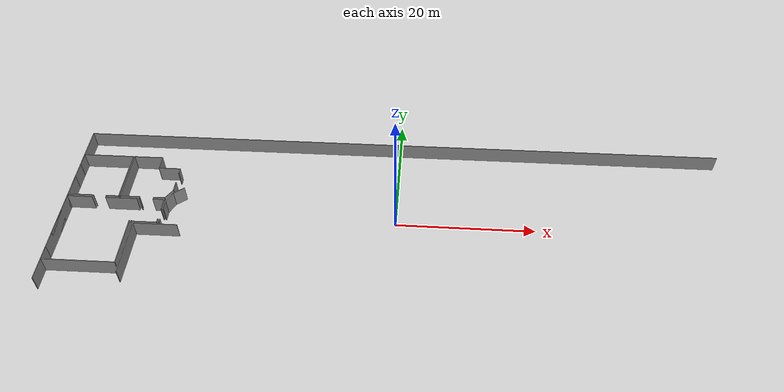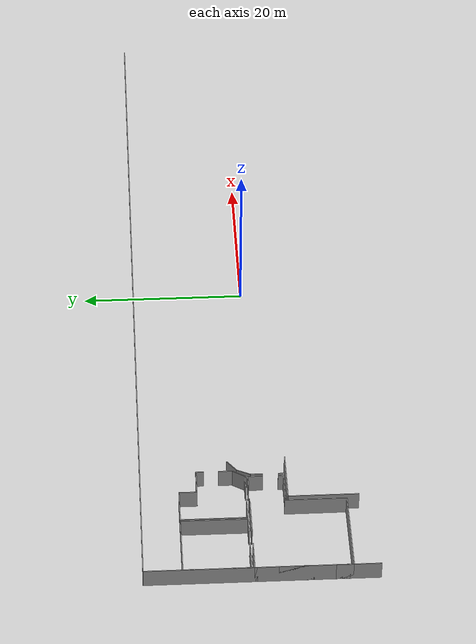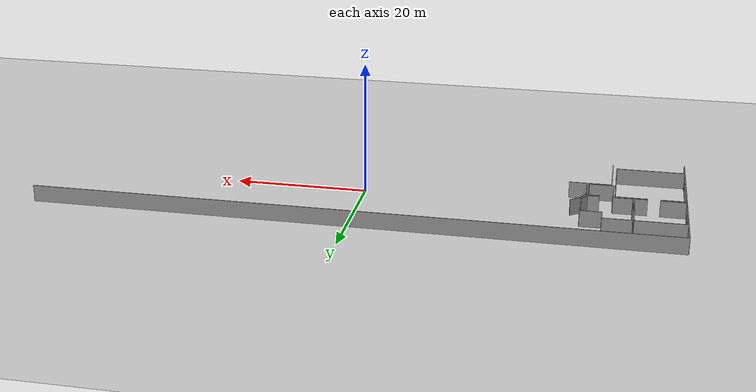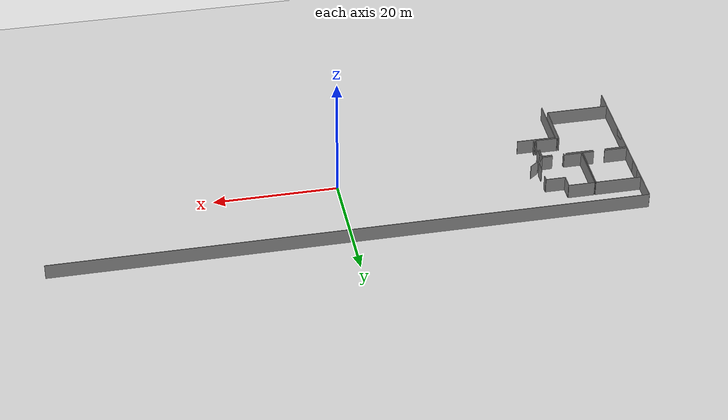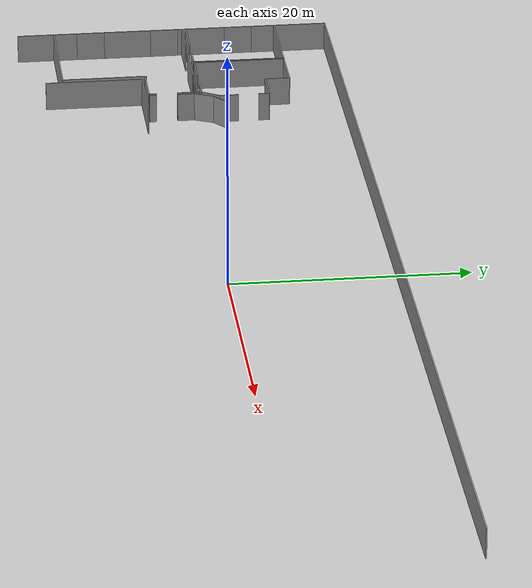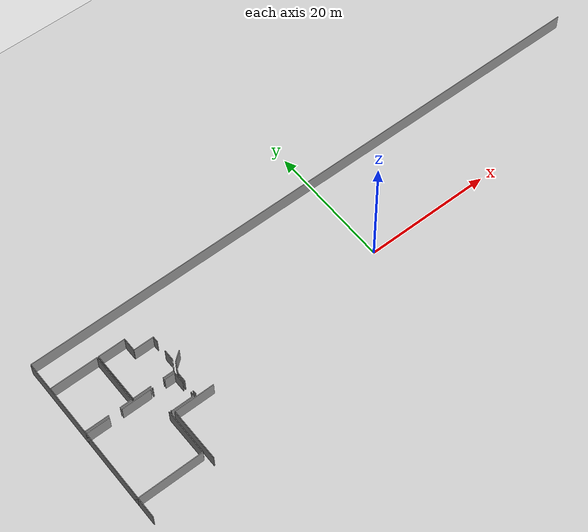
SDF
<sdf version="1.6">
 <world name="default">
  <model name="ground_plane">
   <static>1</static>
   <link name="link">
    <collision name="collision">
     <geometry><plane><normal>0 0 1</normal><size>100 100</size></plane></geometry>
     <surface><friction><ode><mu>100</mu><mu2>50</mu2></ode></friction></surface>
    </collision>
    <visual name="visual">
     <cast_shadows>0</cast_shadows>
     <geometry><plane><normal>0 0 1</normal><size>100 100</size></plane></geometry>
     <material>
      <script><uri>file://media/materials/scripts/gazebo.material</uri><name>Gazebo/Grey</name></script>
     </material>
    </visual>
   </link>
  </model>
  <model name="0510032271_A_40_1_105">
   <static>1</static>
   <link name="Wall_0">
    <collision name="Wall_0_Collision">
     <geometry><box><size>1.86958950014 0.1 2.5</size></box></geometry>
     <pose>0.93479475007 0 1.25 0 0 0</pose>
    </collision>
    <visual name="Wall_0_Visual">
     <pose>0.93479475007 0 1.25 0 0 0</pose>
     <geometry><box><size>1.86958950014 0.1 2.5</size></box></geometry>
     <material>
      <script><uri>file://media/materials/scripts/gazebo.material</uri><name>Gazebo/Grey</name></script>
      <ambient>1 1 1 1</ambient>
     </material>
    </visual>
    <pose>7.43367774365 -12.5325581986 0 0 0 3.14159265359</pose>
   </link>
   <link name="Wall_1">
    <collision name="Wall_1_Collision">
     <geometry><box><size>3.76126526364 0.1 2.5</size></box></geometry>
     <pose>1.88063263182 0 1.25 0 0 0</pose>
    </collision>
    <visual name="Wall_1_Visual">
     <pose>1.88063263182 0 1.25 0 0 0</pose>
     <geometry><box><size>3.76126526364 0.1 2.5</size></box></geometry>
     <material>
      <script><uri>file://media/materials/scripts/gazebo.material</uri><name>Gazebo/Grey</name></script>
      <ambient>1 1 1 1</ambient>
     </material>
    </visual>
    <pose>3.76875428397 -12.5325581986 0 0 0 3.14159265359</pose>
   </link>
   <link name="Wall_2">
    <collision name="Wall_2_Collision">
     <geometry><box><size>3.45370769973 0.1 2.5</size></box></geometry>
     <pose>1.72685384986 0 1.25 0 0 0</pose>
    </collision>
    <visual name="Wall_2_Visual">
     <pose>1.72685384986 0 1.25 0 0 0</pose>
     <geometry><box><size>3.45370769973 0.1 2.5</size></box></geometry>
     <material>
      <script><uri>file://media/materials/scripts/gazebo.material</uri><name>Gazebo/Grey</name></script>
      <ambient>1 1 1 1</ambient>
     </material>
    </visual>
    <pose>0.0074890203346 -12.5325581986 0 0 0 1.57079632679</pose>
   </link>
   <link name="Wall_3">
    <collision name="Wall_3_Collision">
     <geometry><box><size>2.05668807596 0.1 2.5</size></box></geometry>
     <pose>1.02834403798 0 1.25 0 0 0</pose>
    </collision>
    <visual name="Wall_3_Visual">
     <pose>1.02834403798 0 1.25 0 0 0</pose>
     <geometry><box><size>2.05668807596 0.1 2.5</size></box></geometry>
     <material>
      <script><uri>file://media/materials/scripts/gazebo.material</uri><name>Gazebo/Grey</name></script>
      <ambient>1 1 1 1</ambient>
     </material>
    </visual>
    <pose>0.0074890203346 -6.63095630982 0 0 0 1.57079632679</pose>
   </link>
   <link name="Wall_4">
    <collision name="Wall_4_Collision">
     <geometry><box><size>7.446497931 0.1 2.5</size></box></geometry>
     <pose>3.7232489655 0 1.25 0 0 0</pose>
    </collision>
    <visual name="Wall_4_Visual">
     <pose>3.7232489655 0 1.25 0 0 0</pose>
     <geometry><box><size>7.446497931 0.1 2.5</size></box></geometry>
     <material>
      <script><uri>file://media/materials/scripts/gazebo.material</uri><name>Gazebo/Grey</name></script>
      <ambient>1 1 1 1</ambient>
     </material>
    </visual>
    <pose>0.0074890203346 -4.57426823386 0 0 0 0.0</pose>
   </link>
   <link name="Wall_5">
    <collision name="Wall_5_Collision">
     <geometry><box><size>7.95831587878 0.1 2.5</size></box></geometry>
     <pose>3.97915793939 0 1.25 0 0 0</pose>
    </collision>
    <visual name="Wall_5_Visual">
     <pose>3.97915793939 0 1.25 0 0 0</pose>
     <geometry><box><size>7.95831587878 0.1 2.5</size></box></geometry>
     <material>
      <script><uri>file://media/materials/scripts/gazebo.material</uri><name>Gazebo/Grey</name></script>
      <ambient>1 1 1 1</ambient>
     </material>
    </visual>
    <pose>7.45398695133 -4.57426823386 0 0 0 -1.57334827749</pose>
   </link>
   <link name="Wall_6">
    <collision name="Wall_6_Collision">
     <geometry><box><size>10.1986494377 0.1 2.5</size></box></geometry>
     <pose>5.09932471884 0 1.25 0 0 0</pose>
    </collision>
    <visual name="Wall_6_Visual">
     <pose>5.09932471884 0 1.25 0 0 0</pose>
     <geometry><box><size>10.1986494377 0.1 2.5</size></box></geometry>
     <material>
      <script><uri>file://media/materials/scripts/gazebo.material</uri><name>Gazebo/Grey</name></script>
      <ambient>1 1 1 1</ambient>
     </material>
    </visual>
    <pose>10.1986494377 -24.3393160874 0 0 0 3.14159265359</pose>
   </link>
   <link name="Wall_7">
    <collision name="Wall_7_Collision">
     <geometry><box><size>2.03904445178 0.1 2.5</size></box></geometry>
     <pose>1.01952222589 0 1.25 0 0 0</pose>
    </collision>
    <visual name="Wall_7_Visual">
     <pose>1.01952222589 0 1.25 0 0 0</pose>
     <geometry><box><size>2.03904445178 0.1 2.5</size></box></geometry>
     <material>
      <script><uri>file://media/materials/scripts/gazebo.material</uri><name>Gazebo/Grey</name></script>
      <ambient>1 1 1 1</ambient>
     </material>
    </visual>
    <pose>0.0 -24.3393160874 0 0 0 1.57079632679</pose>
   </link>
   <link name="Wall_8">
    <collision name="Wall_8_Collision">
     <geometry><box><size>4.1432053007 0.1 2.5</size></box></geometry>
     <pose>2.07160265035 0 1.25 0 0 0</pose>
    </collision>
    <visual name="Wall_8_Visual">
     <pose>2.07160265035 0 1.25 0 0 0</pose>
     <geometry><box><size>4.1432053007 0.1 2.5</size></box></geometry>
     <material>
      <script><uri>file://media/materials/scripts/gazebo.material</uri><name>Gazebo/Grey</name></script>
      <ambient>1 1 1 1</ambient>
     </material>
    </visual>
    <pose>0.0 -19.8389225965 0 0 0 1.57079632679</pose>
   </link>
   <link name="Wall_9">
    <collision name="Wall_9_Collision">
     <geometry><box><size>0.367215861491 0.1 2.5</size></box></geometry>
     <pose>0.183607930746 0 1.25 0 0 0</pose>
    </collision>
    <visual name="Wall_9_Visual">
     <pose>0.183607930746 0 1.25 0 0 0</pose>
     <geometry><box><size>0.367215861491 0.1 2.5</size></box></geometry>
     <material>
      <script><uri>file://media/materials/scripts/gazebo.material</uri><name>Gazebo/Grey</name></script>
      <ambient>1 1 1 1</ambient>
     </material>
    </visual>
    <pose>0.0 -13.2419842096 0 0 0 1.57079632679</pose>
   </link>
   <link name="Wall_10">
    <collision name="Wall_10_Collision">
     <geometry><box><size>3.64892995862 0.1 2.5</size></box></geometry>
     <pose>1.82446497931 0 1.25 0 0 0</pose>
    </collision>
    <visual name="Wall_10_Visual">
     <pose>1.82446497931 0 1.25 0 0 0</pose>
     <geometry><box><size>3.64892995862 0.1 2.5</size></box></geometry>
     <material>
      <script><uri>file://media/materials/scripts/gazebo.material</uri><name>Gazebo/Grey</name></script>
      <ambient>1 1 1 1</ambient>
     </material>
    </visual>
    <pose>0.0 -12.8747683481 0 0 0 0.0</pose>
   </link>
   <link name="Wall_11">
    <collision name="Wall_11_Collision">
     <geometry><box><size>4.58772308395 0.1 2.5</size></box></geometry>
     <pose>2.29386154198 0 1.25 0 0 0</pose>
    </collision>
    <visual name="Wall_11_Visual">
     <pose>2.29386154198 0 1.25 0 0 0</pose>
     <geometry><box><size>4.58772308395 0.1 2.5</size></box></geometry>
     <material>
      <script><uri>file://media/materials/scripts/gazebo.material</uri><name>Gazebo/Grey</name></script>
      <ambient>1 1 1 1</ambient>
     </material>
    </visual>
    <pose>5.60089868244 -12.8747683481 0 0 0 0.0</pose>
   </link>
   <link name="Wall_12">
    <collision name="Wall_12_Collision">
     <geometry><box><size>7.36450633191 0.1 2.5</size></box></geometry>
     <pose>3.68225316596 0 1.25 0 0 0</pose>
    </collision>
    <visual name="Wall_12_Visual">
     <pose>3.68225316596 0 1.25 0 0 0</pose>
     <geometry><box><size>7.36450633191 0.1 2.5</size></box></geometry>
     <material>
      <script><uri>file://media/materials/scripts/gazebo.material</uri><name>Gazebo/Grey</name></script>
      <ambient>1 1 1 1</ambient>
     </material>
    </visual>
    <pose>10.1886217664 -16.9748165825 0 0 0 -1.56943470472</pose>
   </link>
   <link name="Wall_13">
    <collision name="Wall_13_Collision">
     <geometry><box><size>3.63839455713 0.1 2.5</size></box></geometry>
     <pose>1.81919727857 0 1.25 0 0 0</pose>
    </collision>
    <visual name="Wall_13_Visual">
     <pose>1.81919727857 0 1.25 0 0 0</pose>
     <geometry><box><size>3.63839455713 0.1 2.5</size></box></geometry>
     <material>
      <script><uri>file://media/materials/scripts/gazebo.material</uri><name>Gazebo/Grey</name></script>
      <ambient>1 1 1 1</ambient>
     </material>
    </visual>
    <pose>14.1099489731 -17.11368079 0 0 0 3.14159265359</pose>
   </link>
   <link name="Wall_14">
    <collision name="Wall_14_Collision">
     <geometry><box><size>0.124393897083 0.1 2.5</size></box></geometry>
     <pose>0.0621969485415 0 1.25 0 0 0</pose>
    </collision>
    <visual name="Wall_14_Visual">
     <pose>0.0621969485415 0 1.25 0 0 0</pose>
     <geometry><box><size>0.124393897083 0.1 2.5</size></box></geometry>
     <material>
      <script><uri>file://media/materials/scripts/gazebo.material</uri><name>Gazebo/Grey</name></script>
      <ambient>1 1 1 1</ambient>
     </material>
    </visual>
    <pose>10.471554416 -17.11368079 0 0 0 1.57079632679</pose>
   </link>
   <link name="Wall_15">
    <collision name="Wall_15_Collision">
     <geometry><box><size>0.139371937752 0.1 2.5</size></box></geometry>
     <pose>0.0696859688761 0 1.25 0 0 0</pose>
    </collision>
    <visual name="Wall_15_Visual">
     <pose>0.0696859688761 0 1.25 0 0 0</pose>
     <geometry><box><size>0.139371937752 0.1 2.5</size></box></geometry>
     <material>
      <script><uri>file://media/materials/scripts/gazebo.material</uri><name>Gazebo/Grey</name></script>
      <ambient>1 1 1 1</ambient>
     </material>
    </visual>
    <pose>10.471554416 -12.8380848417 0 0 0 0.0</pose>
   </link>
   <link name="Wall_16">
    <collision name="Wall_16_Collision">
     <geometry><box><size>1.63590667919 0.1 2.5</size></box></geometry>
     <pose>0.817953339595 0 1.25 0 0 0</pose>
    </collision>
    <visual name="Wall_16_Visual">
     <pose>0.817953339595 0 1.25 0 0 0</pose>
     <geometry><box><size>1.63590667919 0.1 2.5</size></box></geometry>
     <material>
      <script><uri>file://media/materials/scripts/gazebo.material</uri><name>Gazebo/Grey</name></script>
      <ambient>1 1 1 1</ambient>
     </material>
    </visual>
    <pose>12.4829275723 -12.8380848417 0 0 0 0.0</pose>
   </link>
   <link name="Wall_17">
    <collision name="Wall_17_Collision">
     <geometry><box><size>1.80866187708 0.1 2.5</size></box></geometry>
     <pose>0.904330938539 0 1.25 0 0 0</pose>
    </collision>
    <visual name="Wall_17_Visual">
     <pose>0.904330938539 0 1.25 0 0 0</pose>
     <geometry><box><size>1.80866187708 0.1 2.5</size></box></geometry>
     <material>
      <script><uri>file://media/materials/scripts/gazebo.material</uri><name>Gazebo/Grey</name></script>
      <ambient>1 1 1 1</ambient>
     </material>
    </visual>
    <pose>14.1188342515 -12.8380848417 0 0 0 -1.57079632679</pose>
   </link>
   <link name="Wall_18">
    <collision name="Wall_18_Collision">
     <geometry><box><size>0.661885946992 0.1 2.5</size></box></geometry>
     <pose>0.330942973496 0 1.25 0 0 0</pose>
    </collision>
    <visual name="Wall_18_Visual">
     <pose>0.330942973496 0 1.25 0 0 0</pose>
     <geometry><box><size>0.661885946992 0.1 2.5</size></box></geometry>
     <material>
      <script><uri>file://media/materials/scripts/gazebo.material</uri><name>Gazebo/Grey</name></script>
      <ambient>1 1 1 1</ambient>
     </material>
    </visual>
    <pose>14.1188342515 -16.4518544845 0 0 0 -1.58422091345</pose>
   </link>
   <link name="Wall_19">
    <collision name="Wall_19_Collision">
     <geometry><box><size>1.71079688254 0.1 2.5</size></box></geometry>
     <pose>0.855398441268 0 1.25 0 0 0</pose>
    </collision>
    <visual name="Wall_19_Visual">
     <pose>0.855398441268 0 1.25 0 0 0</pose>
     <geometry><box><size>1.71079688254 0.1 2.5</size></box></geometry>
     <material>
      <script><uri>file://media/materials/scripts/gazebo.material</uri><name>Gazebo/Grey</name></script>
      <ambient>1 1 1 1</ambient>
     </material>
    </visual>
    <pose>14.1833159859 -12.509964205 0 0 0 3.14159265359</pose>
   </link>
   <link name="Wall_20">
    <collision name="Wall_20_Collision">
     <geometry><box><size>2.85598233099 0.1 2.5</size></box></geometry>
     <pose>1.42799116549 0 1.25 0 0 0</pose>
    </collision>
    <visual name="Wall_20_Visual">
     <pose>1.42799116549 0 1.25 0 0 0</pose>
     <geometry><box><size>2.85598233099 0.1 2.5</size></box></geometry>
     <material>
      <script><uri>file://media/materials/scripts/gazebo.material</uri><name>Gazebo/Grey</name></script>
      <ambient>1 1 1 1</ambient>
     </material>
    </visual>
    <pose>10.5133152243 -12.509964205 0 0 0 3.14159265359</pose>
   </link>
   <link name="Wall_21">
    <collision name="Wall_21_Collision">
     <geometry><box><size>7.93696529664 0.1 2.5</size></box></geometry>
     <pose>3.96848264832 0 1.25 0 0 0</pose>
    </collision>
    <visual name="Wall_21_Visual">
     <pose>3.96848264832 0 1.25 0 0 0</pose>
     <geometry><box><size>7.93696529664 0.1 2.5</size></box></geometry>
     <material>
      <script><uri>file://media/materials/scripts/gazebo.material</uri><name>Gazebo/Grey</name></script>
      <ambient>1 1 1 1</ambient>
     </material>
    </visual>
    <pose>7.6573328933 -12.509964205 0 0 0 1.57079632679</pose>
   </link>
   <link name="Wall_22">
    <collision name="Wall_22_Collision">
     <geometry><box><size>4.24932091087 0.1 2.5</size></box></geometry>
     <pose>2.12466045543 0 1.25 0 0 0</pose>
    </collision>
    <visual name="Wall_22_Visual">
     <pose>2.12466045543 0 1.25 0 0 0</pose>
     <geometry><box><size>4.24932091087 0.1 2.5</size></box></geometry>
     <material>
      <script><uri>file://media/materials/scripts/gazebo.material</uri><name>Gazebo/Grey</name></script>
      <ambient>1 1 1 1</ambient>
     </material>
    </visual>
    <pose>7.6573328933 -4.57299890838 0 0 0 0.0</pose>
   </link>
   <link name="Wall_23">
    <collision name="Wall_23_Collision">
     <geometry><box><size>2.13398999772 0.1 2.5</size></box></geometry>
     <pose>1.06699499886 0 1.25 0 0 0</pose>
    </collision>
    <visual name="Wall_23_Visual">
     <pose>1.06699499886 0 1.25 0 0 0</pose>
     <geometry><box><size>2.13398999772 0.1 2.5</size></box></geometry>
     <material>
      <script><uri>file://media/materials/scripts/gazebo.material</uri><name>Gazebo/Grey</name></script>
      <ambient>1 1 1 1</ambient>
     </material>
    </visual>
    <pose>11.9066538042 -4.57299890838 0 0 0 -1.57079632679</pose>
   </link>
   <link name="Wall_24">
    <collision name="Wall_24_Collision">
     <geometry><box><size>3.1635398949 0.1 2.5</size></box></geometry>
     <pose>1.58176994745 0 1.25 0 0 0</pose>
    </collision>
    <visual name="Wall_24_Visual">
     <pose>1.58176994745 0 1.25 0 0 0</pose>
     <geometry><box><size>3.1635398949 0.1 2.5</size></box></geometry>
     <material>
      <script><uri>file://media/materials/scripts/gazebo.material</uri><name>Gazebo/Grey</name></script>
      <ambient>1 1 1 1</ambient>
     </material>
    </visual>
    <pose>11.9066538042 -6.7069889061 0 0 0 0.0</pose>
   </link>
   <link name="Wall_25">
    <collision name="Wall_25_Collision">
     <geometry><box><size>0.918103120002 0.1 2.5</size></box></geometry>
     <pose>0.459051560001 0 1.25 0 0 0</pose>
    </collision>
    <visual name="Wall_25_Visual">
     <pose>0.459051560001 0 1.25 0 0 0</pose>
     <geometry><box><size>0.918103120002 0.1 2.5</size></box></geometry>
     <material>
      <script><uri>file://media/materials/scripts/gazebo.material</uri><name>Gazebo/Grey</name></script>
      <ambient>1 1 1 1</ambient>
     </material>
    </visual>
    <pose>15.0701936991 -6.7069889061 0 0 0 -1.57079632679</pose>
   </link>
   <link name="Wall_26">
    <collision name="Wall_26_Collision">
     <geometry><box><size>1.648599934 0.1 2.5</size></box></geometry>
     <pose>0.824299966998 0 1.25 0 0 0</pose>
    </collision>
    <visual name="Wall_26_Visual">
     <pose>0.824299966998 0 1.25 0 0 0</pose>
     <geometry><box><size>1.648599934 0.1 2.5</size></box></geometry>
     <material>
      <script><uri>file://media/materials/scripts/gazebo.material</uri><name>Gazebo/Grey</name></script>
      <ambient>1 1 1 1</ambient>
     </material>
    </visual>
    <pose>15.0701936991 -9.38843898352 0 0 0 -1.57079632679</pose>
   </link>
   <link name="Wall_27">
    <collision name="Wall_27_Collision">
     <geometry><box><size>1.71931991808 0.1 2.5</size></box></geometry>
     <pose>0.85965995904 0 1.25 0 0 0</pose>
    </collision>
    <visual name="Wall_27_Visual">
     <pose>0.85965995904 0 1.25 0 0 0</pose>
     <geometry><box><size>1.71931991808 0.1 2.5</size></box></geometry>
     <material>
      <script><uri>file://media/materials/scripts/gazebo.material</uri><name>Gazebo/Grey</name></script>
      <ambient>1 1 1 1</ambient>
     </material>
    </visual>
    <pose>15.0701936991 -11.0370389175 0 0 0 -2.11277316238</pose>
   </link>
   <link name="Wall_48">
    <collision name="Wall_48_Collision">
     <geometry><box><size>0.60737224239 0.1 2.5</size></box></geometry>
     <pose>0.303686121195 0 1.25 0 0 0</pose>
    </collision>
    <visual name="Wall_48_Visual">
     <pose>0.303686121195 0 1.25 0 0 0</pose>
     <geometry><box><size>0.60737224239 0.1 2.5</size></box></geometry>
     <material>
      <script><uri>file://media/materials/scripts/gazebo.material</uri><name>Gazebo/Grey</name></script>
      <ambient>1 1 1 1</ambient>
     </material>
    </visual>
    <pose>14.4406082608 -17.0886750781 0 0 0 1.57079632679</pose>
   </link>
   <link name="Wall_49">
    <collision name="Wall_49_Collision">
     <geometry><box><size>1.45693178645 0.1 2.5</size></box></geometry>
     <pose>0.728465893224 0 1.25 0 0 0</pose>
    </collision>
    <visual name="Wall_49_Visual">
     <pose>0.728465893224 0 1.25 0 0 0</pose>
     <geometry><box><size>1.45693178645 0.1 2.5</size></box></geometry>
     <material>
      <script><uri>file://media/materials/scripts/gazebo.material</uri><name>Gazebo/Grey</name></script>
      <ambient>1 1 1 1</ambient>
     </material>
    </visual>
    <pose>14.4406082608 -14.6401462263 0 0 0 1.57079632679</pose>
   </link>
   <link name="Wall_50">
    <collision name="Wall_50_Collision">
     <geometry><box><size>1.78620986174 0.1 2.5</size></box></geometry>
     <pose>0.89310493087 0 1.25 0 0 0</pose>
    </collision>
    <visual name="Wall_50_Visual">
     <pose>0.89310493087 0 1.25 0 0 0</pose>
     <geometry><box><size>1.78620986174 0.1 2.5</size></box></geometry>
     <material>
      <script><uri>file://media/materials/scripts/gazebo.material</uri><name>Gazebo/Grey</name></script>
      <ambient>1 1 1 1</ambient>
     </material>
    </visual>
    <pose>14.4406082608 -13.1832144398 0 0 0 1.13925215173</pose>
   </link>
   <link name="Wall_51">
    <collision name="Wall_51_Collision">
     <geometry><box><size>1.77744013238 0.1 2.5</size></box></geometry>
     <pose>0.888720066191 0 1.25 0 0 0</pose>
    </collision>
    <visual name="Wall_51_Visual">
     <pose>0.888720066191 0 1.25 0 0 0</pose>
     <geometry><box><size>1.77744013238 0.1 2.5</size></box></geometry>
     <material>
      <script><uri>file://media/materials/scripts/gazebo.material</uri><name>Gazebo/Grey</name></script>
      <ambient>1 1 1 1</ambient>
     </material>
    </visual>
    <pose>15.1877332386 -11.5607626107 0 0 0 0.662126727762</pose>
   </link>
   <link name="Wall_100">
    <collision name="Wall_100_Collision">
     <geometry><box><size>8.43416008733 0.1 2.5</size></box></geometry>
     <pose>4.21708004366 0 1.25 0 0 0</pose>
    </collision>
    <visual name="Wall_100_Visual">
     <pose>4.21708004366 0 1.25 0 0 0</pose>
     <geometry><box><size>8.43416008733 0.1 2.5</size></box></geometry>
     <material>
      <script><uri>file://media/materials/scripts/gazebo.material</uri><name>Gazebo/Grey</name></script>
      <ambient>1 1 1 1</ambient>
     </material>
    </visual>
    <pose>10.7836815516 -25.857429362 0 0 0 1.57079632679</pose>
   </link>
   <link name="Wall_101">
    <collision name="Wall_101_Collision">
     <geometry><box><size>6.28963468813 0.1 2.5</size></box></geometry>
     <pose>3.14481734406 0 1.25 0 0 0</pose>
    </collision>
    <visual name="Wall_101_Visual">
     <pose>3.14481734406 0 1.25 0 0 0</pose>
     <geometry><box><size>6.28963468813 0.1 2.5</size></box></geometry>
     <material>
      <script><uri>file://media/materials/scripts/gazebo.material</uri><name>Gazebo/Grey</name></script>
      <ambient>1 1 1 1</ambient>
     </material>
    </visual>
    <pose>10.7836815516 -17.4232692747 0 0 0 0.0</pose>
   </link>
   <link name="Wall_214">
    <collision name="Wall_214_Collision">
     <geometry><box><size>27.5791424437 0.1 2.5</size></box></geometry>
     <pose>13.7895712219 0 1.25 0 0 0</pose>
    </collision>
    <visual name="Wall_214_Visual">
     <pose>13.7895712219 0 1.25 0 0 0</pose>
     <geometry><box><size>27.5791424437 0.1 2.5</size></box></geometry>
     <material>
      <script><uri>file://media/materials/scripts/gazebo.material</uri><name>Gazebo/Grey</name></script>
      <ambient>1 1 1 1</ambient>
     </material>
    </visual>
    <pose>0.0 -27.5791424437 0 0 0 1.57079632679</pose>
   </link>
   <link name="Wall_215">
    <collision name="Wall_215_Collision">
     <geometry><box><size>95.1646315148 0.1 2.5</size></box></geometry>
     <pose>47.5823157574 0 1.25 0 0 0</pose>
    </collision>
    <visual name="Wall_215_Visual">
     <pose>47.5823157574 0 1.25 0 0 0</pose>
     <geometry><box><size>95.1646315148 0.1 2.5</size></box></geometry>
     <material>
      <script><uri>file://media/materials/scripts/gazebo.material</uri><name>Gazebo/Grey</name></script>
      <ambient>1 1 1 1</ambient>
     </material>
    </visual>
   </link>
   <pose>-47.55 13.7791424437 0 0 0 0</pose>
  </model>
 </world>
</sdf>
